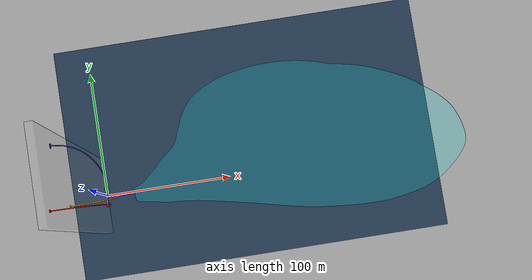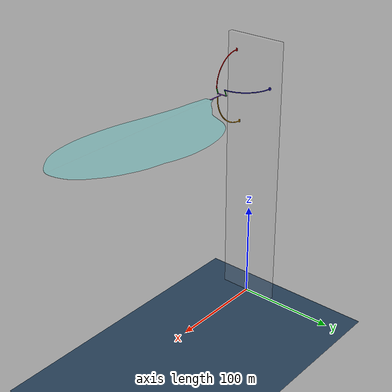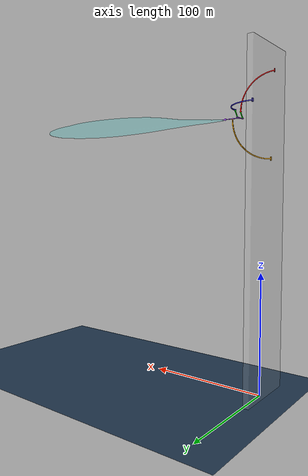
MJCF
<?xml version="1.0" ?>
<mujoco>
  <compiler coordinate="global" angle="radian"/>
  <option gravity="0.0 0.0 -9.81" timestep="0.005"/>
  <asset>
    <mesh file="./mesh_files/mount_plate.stl"/>
    <mesh file="./mesh_files/sla.stl"/>
    <mesh file="./mesh_files/scu.stl"/>
    <mesh file="./mesh_files/pwp.stl"/>
    <mesh file="./mesh_files/mu1.stl"/>
    <mesh file="./mesh_files/mu1.stl"/>
    <mesh file="./mesh_files/ax1_and_vein.stl"/>
    <mesh file="./mesh_files/wing.stl"/>
    <material name="color_0" rgba="0.00 1.00 0.00 1.00"/>
    <material name="color_1" rgba="0.19 0.15 0.80 1.00"/>
    <material name="color_2" rgba="0.80 0.80 0.80 0.20"/>
    <material name="color_3" rgba="1.00 0.67 0.00 1.00"/>
    <material name="color_4" rgba="0.67 0.33 1.00 1.00"/>
    <material name="color_5" rgba="1.00 0.00 0.00 1.00"/>
    <material name="color_6" rgba="0.00 1.00 1.00 0.20"/>
    <texture name="grid" type="2d" builtin="checker" width="512" height="512" rgb1="0.1 0.2 0.3" rgb2="0.2 0.3 0.4"/>
    <material name="grid" texture="grid" texrepeat="10 10" texuniform="false" reflectance=".2"/>
  </asset>
  <worldbody>
    <geom name="floor" type="plane" material="grid" condim="3" size="2800.0000000000027 2800.0000000000027 0.05"/>
    <light name="spotlight" mode="targetbodycom" diffuse="0.8 0.8 0.8" specular="0.2 0.2 0.2" pos="368.1287668967089 75.01902118620148 420.00000000000045" cutoff="560.0000000000006" target="mount_plate_001"/>
    <body name="mount_plate_001" pos="0.0 0.0 0.0" quat="1.0 0.0 0.0 0.0">
      <geom name="mount_plate_001_mesh" type="mesh" mesh="mount_plate" material="color_2" pos="0.0 0.0 0.0" quat="1.0 0.0 0.0 0.0"/>
      <freejoint name="mount_plate_001_joint"/>
      <body name="sla_001" pos="-0.500000000000282 19.999999993791963 233.72669264430922" quat="6.317222293885728e-09 0.7071067855762254 -0.7071067767968696 6.317220958106056e-09">
        <geom name="sla_001_mesh" type="mesh" mesh="sla" material="color_1" pos="-0.500000000000282 19.999999993791963 233.72669264430922" quat="6.317222293885728e-09 0.7071067855762254 -0.7071067767968696 6.317220958106056e-09"/>
        <joint name="sla_001_joint" type="hinge" pos="-0.500000000000282 19.999999993791963 233.72669264430922" axis="1.0 0.0 0.0" limited="false" springref="0"/>
        <body name="mu1_002" pos="29.49999793751032 -9.999999688273803 233.03418611406585" quat="0.573505146840694 0.009108692627593135 0.8189885521394992 -0.016328800638647112">
          <geom name="mu1_002_mesh" type="mesh" mesh="mu1" material="color_0" pos="29.49999793751032 -9.999999688273803 233.03418611406585" quat="0.573505146840694 0.009108692627593135 0.8189885521394992 -0.016328800638647112"/>
          <joint name="mu1_002_joint_axis1" type="hinge" pos="29.49999793751032 -9.999999688273803 233.03418611406585" axis="1.0 1.2415884083011619e-08 -2.222044605562574e-15" limited="false" springref="0" stiffness="6.0e9" damping="1.0e7"/>
          <joint name="mu1_002_joint_axis2" type="hinge" pos="29.49999793751032 -9.999999688273803 233.03418611406585" axis="1.2415884003197061e-08 -0.9999999999999998 1.7867801000000004e-08" limited="false" springref="0" stiffness="6.0e9" damping="1.0e7"/>
        </body>
      </body>
      <body name="scu_001" pos="-0.500000000000248 -19.99999999738767 263.66919264246087" quat="0.5000000044604502 -0.4999999992360228 0.5000000007639748 0.4999999955395524">
        <geom name="scu_001_mesh" type="mesh" mesh="scu" material="color_5" pos="-0.500000000000248 -19.99999999738767 263.66919264246087" quat="0.5000000044604502 -0.4999999992360228 0.5000000007639748 0.4999999955395524"/>
        <joint name="scu_001_joint" type="slide" pos="-0.500000000000248 -19.99999999738767 263.66919264246087" axis="0.0 0.0 1.0" limited="false" springref="0"/>
        <body name="mu1_001" pos="29.499997921884592 -20.000000374565776 233.03418590089493" quat="0.5735510853272976 -0.0054994253367977326 0.8191387900263053 0.004533377889026638">
          <geom name="mu1_001_mesh" type="mesh" mesh="mu1" material="color_0" pos="29.499997921884592 -20.000000374565776 233.03418590089493" quat="0.5735510853272976 -0.0054994253367977326 0.8191387900263053 0.004533377889026638"/>
          <joint name="mu1_001_joint_axis1" type="hinge" pos="29.499997921884592 -20.000000374565776 233.03418590089493" axis="1.0 -1.0448849591115916e-08 7.3929458666022185e-09" limited="false" springref="0" stiffness="6.0e9" damping="1.0e7"/>
          <joint name="mu1_001_joint_axis2" type="hinge" pos="29.499997921884592 -20.000000374565776 233.03418590089493" axis="1.0448849840916097e-08 1.0000000000000002 5.079270337660091e-15" limited="false" springref="0" stiffness="6.0e9" damping="1.0e7"/>
        </body>
      </body>
      <body name="pwp_001" pos="-0.499999514956099 -15.01999997105579 191.96580797123704" quat="0.5000000024124049 0.500000003937422 -0.49999999606258205 0.49999999758759106">
        <geom name="pwp_001_mesh" type="mesh" mesh="pwp" material="color_3" pos="-0.499999514956099 -15.01999997105579 191.96580797123704" quat="0.5000000024124049 0.500000003937422 -0.49999999606258205 0.49999999758759106"/>
        <body name="ax1_and_vein_001" pos="34.500006600800994 -15.019999621858702 226.9658218306146" quat="0.9999999999998636 -1.0388710665074776e-10 5.225147250011437e-07 -1.0321908445718867e-08">
          <geom name="ax1_and_vein_001_mesh" type="mesh" mesh="ax1_and_vein" material="color_4" pos="34.500006600800994 -15.019999621858702 226.9658218306146" quat="0.9999999999998636 -1.0388710665074776e-10 5.225147250011437e-07 -1.0321908445718867e-08" density="0.001"/>
          <joint name="ax1_and_vein_001_joint_alpha" type="hinge" pos="34.500006600800994 -15.019999621858702 226.9658218306146" axis="1.0 3.050025926265576e-09 -1.269965427264097e-08" limited="false"/>
          <joint name="ax1_and_vein_001_joint_phi" type="hinge" pos="34.500006600800994 -15.019999621858702 226.9658218306146" axis="-3.0500261205546053e-09 1.0 8.132383655379272e-15" limited="false"/>
          <joint name="ax1_and_vein_001_joint_theta" type="hinge" pos="34.500006600800994 -15.019999621858702 226.9658218306146" axis="1.2699653995085214e-08 -8.215650381887537e-15 1.0" limited="false"/>
          <body name="wing_001" pos="44.500007466012306 -15.019997742908993 227.5333059123474" quat="8.488913887436508e-10 0.9999999999998787 -1.951126908183824e-08 -4.92600280016623e-07">
            <geom name="wing_001_mesh" type="mesh" mesh="wing" material="color_6" pos="44.500007466012306 -15.019997742908993 227.5333059123474" quat="8.488913887436508e-10 0.9999999999998787 -1.951126908183824e-08 -4.92600280016623e-07" density="0.001"/>
          </body>
        </body>
      </body>
    </body>
  </worldbody>
  <equality>
    <connect body1="mu1_001" body2="ax1_and_vein_001" anchor="27.704401931234287 -20.01999948133565 228.10082893326106" solimp="1.0 1.0 0.001 0.5 2.0"/>
    <connect body1="mu1_002" body2="ax1_and_vein_001" anchor="27.704402137672453 -10.019999481335649 228.1008289311832" solimp="1.0 1.0 0.001 0.5 2.0"/>
  </equality>
  <actuator>
    <position name="sla_001_position" joint="sla_001_joint" gear="1" forcelimited="false" ctrllimited="false" kp="6.0e11"/>
    <velocity name="sla_001_velocity" joint="sla_001_joint" gear="1" forcelimited="false" ctrllimited="false" kv="1.0e10"/>
    <position name="scu_001_position" joint="scu_001_joint" gear="1" forcelimited="false" ctrllimited="false" kp="6.0e8"/>
    <velocity name="scu_001_velocity" joint="scu_001_joint" gear="1" forcelimited="false" ctrllimited="false" kv="1.0e8"/>
  </actuator>
</mujoco>
